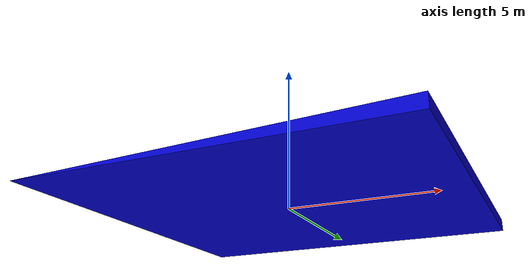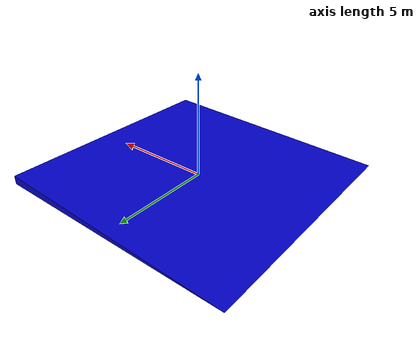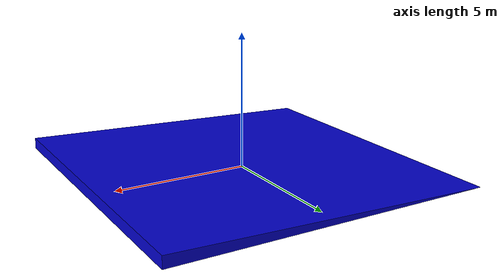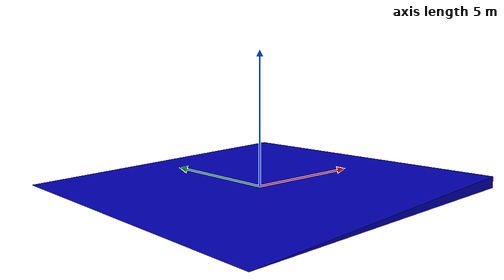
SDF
<?xml version="1.0" ?>
<sdf version="1.5">
  <model name="Blue Ramp 2 Deg">
    <link name="link">
      <collision name="collision">
        <geometry>
          <mesh>
            <scale>2 2 2</scale>
            <uri>model://blueRamp2Deg/meshes/blueRamp2deg.dae</uri>
          </mesh>
        </geometry>
      </collision>
      <visual name="visual">
        <geometry>
          <mesh>
            <scale>2 2 2</scale>
            <uri>model://blueRamp2Deg/meshes/blueRamp2deg.dae</uri>
          </mesh>
        </geometry>
      </visual>
      <inertial>
        <inertia>
          <ixx>12029.25</ixx>
          <ixy>0</ixy>
          <ixz>418.6</ixz>
          <iyy>12020.74</iyy>
          <iyz>0</iyz>
          <izz>23991.49</izz>
        </inertia>
        <mass>1000</mass>
      </inertial>
    </link>
    <gazebo reference="link">
      <kp>100000000</kp>
      <kd>500</kd>
      <minDepth>10</minDepth>
      <maxVel>0</maxVel>
    </gazebo>
  </model>
</sdf>
